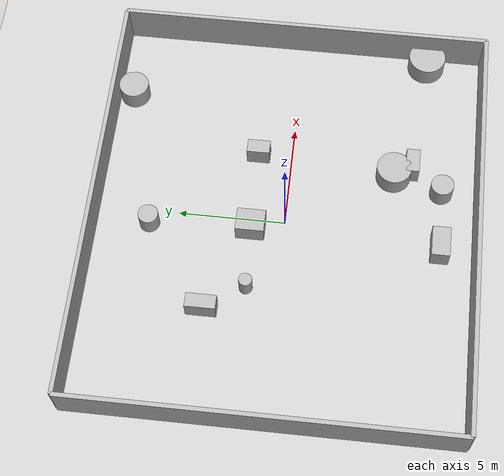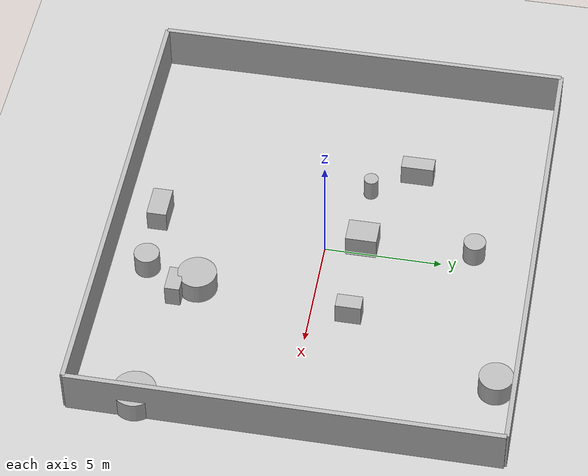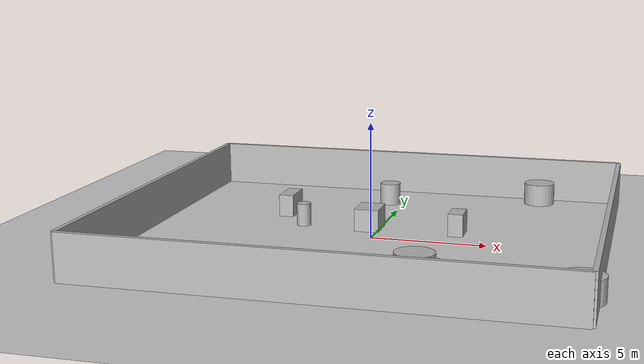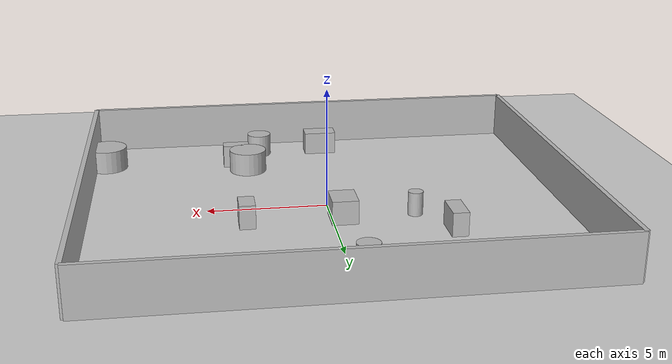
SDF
<?xml version="1.0"?>
<sdf version="1.6">
  <world name="env_56">

    <include><uri>model://ground_plane</uri></include>
    <include><uri>model://sun</uri></include>

    <!-- WALLS -->
    <model name="wall_north"><static>true</static><pose>0 8.888136214199374 1 0 0 0</pose>
      <link name="link"><collision name="collision">
        <geometry><box><size>19.876710275033204 0.2 2</size></box></geometry>
      </collision><visual name="visual">
        <geometry><box><size>19.876710275033204 0.2 2</size></box></geometry>
      </visual></link>
    </model>

    <model name="wall_south"><static>true</static><pose>0 -8.888136214199374 1 0 0 0</pose>
      <link name="link"><collision name="collision">
        <geometry><box><size>19.876710275033204 0.2 2</size></box></geometry>
      </collision><visual name="visual">
        <geometry><box><size>19.876710275033204 0.2 2</size></box></geometry>
      </visual></link>
    </model>

    <model name="wall_east"><static>true</static><pose>9.938355137516602 0 1 0 0 1.57</pose>
      <link name="link"><collision name="collision">
        <geometry><box><size>17.776272428398748 0.2 2</size></box></geometry>
      </collision><visual name="visual">
        <geometry><box><size>17.776272428398748 0.2 2</size></box></geometry>
      </visual></link>
    </model>

    <model name="wall_west"><static>true</static><pose>-9.938355137516602 0 1 0 0 1.57</pose>
      <link name="link"><collision name="collision">
        <geometry><box><size>17.776272428398748 0.2 2</size></box></geometry>
      </collision><visual name="visual">
        <geometry><box><size>17.776272428398748 0.2 2</size></box></geometry>
      </visual></link>
    </model>

    <!-- SENSOR -->

    <model name="lidar_sensor">
      <static>true</static>
      <pose>-8.756629113119756 2.5990522743251585 0.4 0 0 0</pose>
      <link name="link">
        <sensor name="lidar" type="ray">
          <pose>0 0 0 0 0 0</pose>
          <visualize>true</visualize>
          <always_on>true</always_on>
          <update_rate>10</update_rate>
          <ray>
            <scan><horizontal>
              <samples>90</samples>
              <resolution>1</resolution>
              <min_angle>-3.14159</min_angle>
              <max_angle>3.14159</max_angle>
            </horizontal></scan>
            <range><min>0.15</min><max>20.0</max><resolution>0.01</resolution></range>
          </ray>
          <plugin name="lidar_plugin" filename="liblidar_plugin.so"/>
        </sensor>
      </link>
    </model>

    <!-- OBSTACLES -->

    <model name="obstacle_0">
      <static>true</static>
      <pose>3.467076242084783 -5.757539215603444 0.5 0 0 0</pose>
      <link name="link">
        <collision name="collision">
          <geometry><box><size>1.17 0.64 1.0</size></box></geometry>
        </collision>
        <visual name="visual">
          <geometry><box><size>1.17 0.64 1.0</size></box></geometry>
        </visual>
      </link>
    </model>

    <model name="obstacle_1">
      <static>true</static>
      <pose>-0.44427828228087485 1.5492444953488569 0.5 0 0 0</pose>
      <link name="link">
        <collision name="collision">
          <geometry><box><size>1.08 1.33 1.0</size></box></geometry>
        </collision>
        <visual name="visual">
          <geometry><box><size>1.08 1.33 1.0</size></box></geometry>
        </visual>
      </link>
    </model>

    <model name="obstacle_2">
      <static>true</static>
      <pose>2.2896368497812265 -7.207480747795348 0.5 0 0 0</pose>
      <link name="link">
        <collision name="collision">
          <geometry><cylinder><radius>0.54</radius><length>1.0</length></cylinder></geometry>
        </collision>
        <visual name="visual">
          <geometry><cylinder><radius>0.54</radius><length>1.0</length></cylinder></geometry>
        </visual>
      </link>
    </model>

    <model name="obstacle_3">
      <static>true</static>
      <pose>9.371764742875573 -6.14104517909363 0.5 0 0 0</pose>
      <link name="link">
        <collision name="collision">
          <geometry><cylinder><radius>0.89</radius><length>1.0</length></cylinder></geometry>
        </collision>
        <visual name="visual">
          <geometry><cylinder><radius>0.89</radius><length>1.0</length></cylinder></geometry>
        </visual>
      </link>
    </model>

    <model name="obstacle_4">
      <static>true</static>
      <pose>-4.691053849608387 3.3039873048160757 0.5 0 0 0</pose>
      <link name="link">
        <collision name="collision">
          <geometry><box><size>0.66 1.41 1.0</size></box></geometry>
        </collision>
        <visual name="visual">
          <geometry><box><size>0.66 1.41 1.0</size></box></geometry>
        </visual>
      </link>
    </model>

    <model name="obstacle_5">
      <static>true</static>
      <pose>6.304863919854256 8.08132695460263 0.5 0 0 0</pose>
      <link name="link">
        <collision name="collision">
          <geometry><cylinder><radius>0.71</radius><length>1.0</length></cylinder></geometry>
        </collision>
        <visual name="visual">
          <geometry><cylinder><radius>0.71</radius><length>1.0</length></cylinder></geometry>
        </visual>
      </link>
    </model>

    <model name="obstacle_6">
      <static>true</static>
      <pose>-0.641278473151333 6.301935956250221 0.5 0 0 0</pose>
      <link name="link">
        <collision name="collision">
          <geometry><cylinder><radius>0.47</radius><length>1.0</length></cylinder></geometry>
        </collision>
        <visual name="visual">
          <geometry><cylinder><radius>0.47</radius><length>1.0</length></cylinder></geometry>
        </visual>
      </link>
    </model>

    <model name="obstacle_7">
      <static>true</static>
      <pose>2.977424440778014 -4.89909942490725 0.5 0 0 0</pose>
      <link name="link">
        <collision name="collision">
          <geometry><cylinder><radius>0.82</radius><length>1.0</length></cylinder></geometry>
        </collision>
        <visual name="visual">
          <geometry><cylinder><radius>0.82</radius><length>1.0</length></cylinder></geometry>
        </visual>
      </link>
    </model>

    <model name="obstacle_8">
      <static>true</static>
      <pose>-3.4570770115300844 1.4322940742669719 0.5 0 0 0</pose>
      <link name="link">
        <collision name="collision">
          <geometry><cylinder><radius>0.31</radius><length>1.0</length></cylinder></geometry>
        </collision>
        <visual name="visual">
          <geometry><cylinder><radius>0.31</radius><length>1.0</length></cylinder></geometry>
        </visual>
      </link>
    </model>

    <model name="obstacle_9">
      <static>true</static>
      <pose>-0.6201845812124294 -7.277529761450042 0.5 0 0 0</pose>
      <link name="link">
        <collision name="collision">
          <geometry><box><size>1.44 0.85 1.0</size></box></geometry>
        </collision>
        <visual name="visual">
          <geometry><box><size>1.44 0.85 1.0</size></box></geometry>
        </visual>
      </link>
    </model>

    <model name="obstacle_10">
      <static>true</static>
      <pose>3.4642696130420685 1.6072146791682407 0.5 0 0 0</pose>
      <link name="link">
        <collision name="collision">
          <geometry><box><size>0.66 1.08 1.0</size></box></geometry>
        </collision>
        <visual name="visual">
          <geometry><box><size>0.66 1.08 1.0</size></box></geometry>
        </visual>
      </link>
    </model>

  </world>
</sdf>
